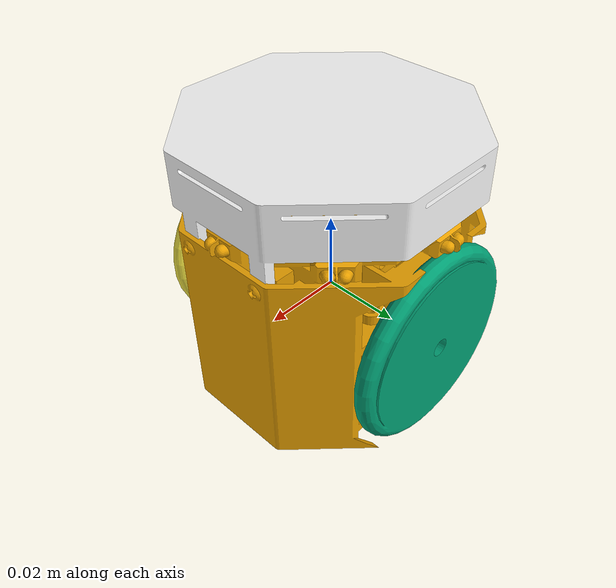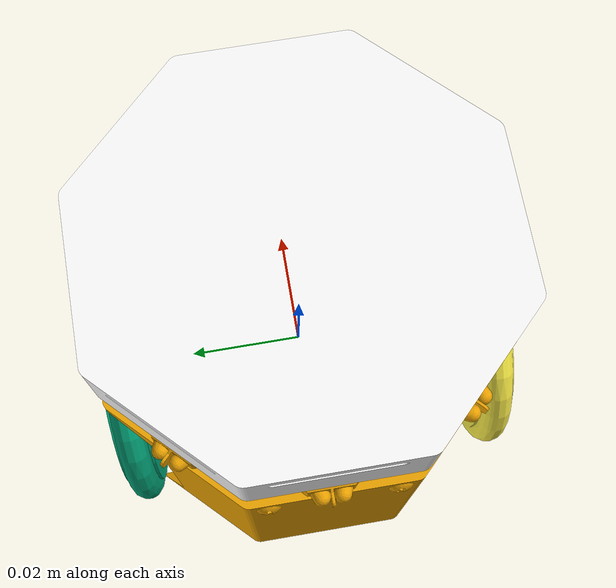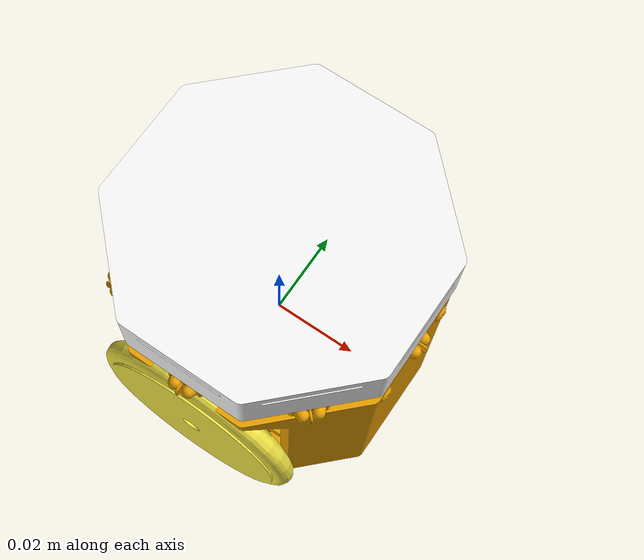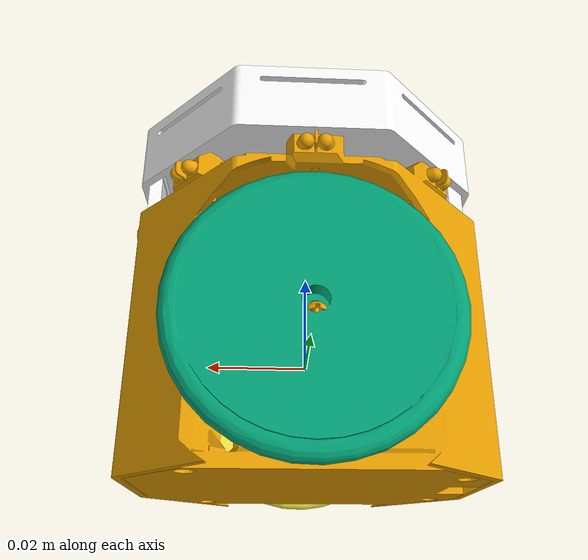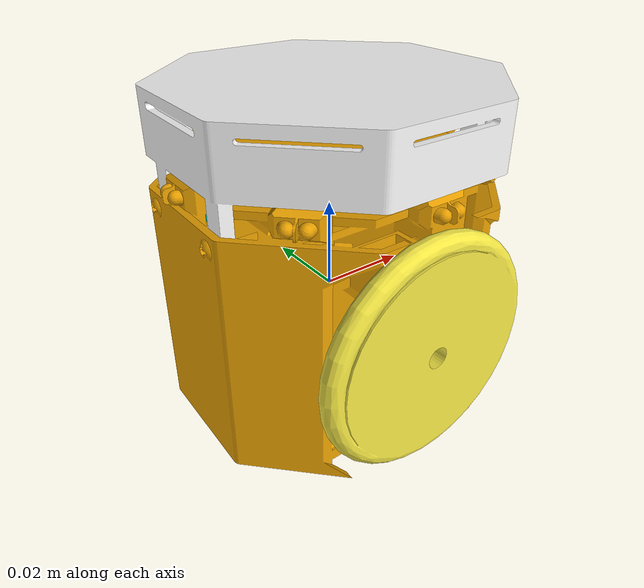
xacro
<?xml version="1.0"?>
<robot xmlns:xacro="http://www.ros.org/wiki/xacro" name="hero_0">
  <!-- Properties  -->
  <xacro:include filename="$(find hero_description)/urdf/common.xacro" />
  <!-- Initiate HeRo model and controller -->
  <xacro:include filename="$(find hero_description)/urdf/hero.xacro" />
  <xacro:include filename="$(find hero_description)/urdf/hero.gazebo.xacro" />
  <xacro:include filename="$(find hero_description)/urdf/hero.transmissions.xacro" />
  <!-- Initiate Laser and IMU sensors -->

</robot>

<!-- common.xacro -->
<robot xmlns:xacro="http://www.ros.org/wiki/xacro">

  <!-- Some properties of HERO -->
  <property name="PI" value="3.1415926535897931" />
  <property name="wheel_separation" value="0.0623" />
  <property name="wheel_diameter" value="0.052" />

  <macro name="cylinder_inertia" params="m r h">
    <inertia ixx="${m*(3*r*r+h*h)/12}" ixy = "0" ixz = "0" iyy="${m*(3*r*r+h*h)/12}" iyz = "0" izz="${m*r*r/2}" />
  </macro>

  <macro name="box_inertia" params="m x y z">
    <inertia ixx="${m*(y*y+z*z)/12}" ixy = "0" ixz = "0" iyy="${m*(x*x+z*z)/12}" iyz = "0" izz="${m*(x*x+z*z)/12}" />
  </macro>

</robot>

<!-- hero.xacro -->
<robot xmlns:xacro="http://www.ros.org/wiki/xacro">

  <!-- Here was the base link definitions -->
  <link name="base_link">
    <visual>
      <origin xyz="0 0 0" rpy="0 0 ${PI}" />
      <geometry>
        <mesh filename="package://hero_description/meshes/base_link.dae" scale="1 1 1"/>
      </geometry>
    </visual>
    <collision>
      <origin xyz="0 0 0" rpy="0 0 ${PI}" />
      <geometry>
        <cylinder length="0.048" radius="0.036"/>
      </geometry>
    </collision>
    <inertial>
      <mass value="0.090" />
      <origin xyz="0 0 0" rpy="0 0 0"/>
      <xacro:cylinder_inertia m="0.090" r="0.035" h="0.055"/>
    </inertial>
  </link>
  <gazebo reference="base_link">
    <gravity>1</gravity>
    <mu1 value="0.01"/>
    <mu2 value="0.01"/>
  </gazebo>

  <!--  Here was the hat joint and link -->
  <joint name="hat_joint" type="fixed">
    <origin xyz="0.0001 0 0.038" rpy="0 0 0" />
    <parent link="base_link"/>
    <child link="hat_link"/>
  </joint>
  <link name="hat_link">
    <visual>
      <origin xyz="0 0 0" rpy="0 0 0" />
      <geometry>
        <mesh filename="package://hero_description/meshes/hat.dae" scale="1 1 1"/>
      </geometry>
    </visual>
    <collision>
      <origin xyz="0 0 0" rpy="0 0 0" />
      <geometry>
        <cylinder length="0.02" radius="0.040"/>
      </geometry>
    </collision>
    <inertial>
      <mass value="0.010" />
      <origin xyz="0 0 0" rpy="0 0 0"/>
      <xacro:cylinder_inertia m="0.010" r="0.035" h="0.02"/>
    </inertial>
  </link>
  <gazebo reference="hat_link">
    <gravity>1</gravity>
    <maxVel value="0.10"/>
  </gazebo>

  <!--  Here was the left wheel joint and link -->
  <joint name="left_wheel_joint" type="continuous">
    <parent link="base_link"/>
    <child link="left_wheel_link"/>
    <origin xyz="0 ${wheel_separation/2} 0.0005" rpy="0 0 0" />
    <axis xyz="0 1 0" />
    <limit effort="100" velocity="0.3"/>
    <dynamics damping="0.0" friction="0.0" />
  </joint>
  <link name="left_wheel_link">
    <visual>
      <origin xyz="0 0 0.0" rpy="${PI/2} 0 0" />
      <geometry>
        <mesh filename="package://hero_description/meshes/wheel.dae" scale="1 1 1"/>
      </geometry>
    </visual>
    <collision>
      <origin xyz="0 0 0.0" rpy="${PI/2} 0 0" />
      <geometry>
        <cylinder length="0.008" radius="${wheel_diameter/2.0}"/>
      </geometry>
    </collision>
    <inertial>
      <mass value="0.010" />
      <origin xyz="0 0 0" rpy="${PI/2} 0 0"/>
      <xacro:cylinder_inertia m="0.010" h="0.008" r="${wheel_diameter/2.0}"/>
    </inertial>
  </link>
  <gazebo reference="left_wheel_link">
    <mu1 value="0.8"/>
    <mu2 value="0.8"/>
    <gravity>1</gravity>
  </gazebo>

  <!--  Here was the right wheel joint and link -->
  <joint name="right_wheel_joint" type="continuous">
    <axis xyz="0 1 0" />
    <limit effort="100" velocity="0.3"/>
    <dynamics damping="0.0" friction="0" />
    <origin xyz="0 ${-wheel_separation/2} 0.0005" rpy="0 0 0" />
    <parent link="base_link"/>
    <child link="right_wheel_link"/>
  </joint>
  <link name="right_wheel_link">
    <visual>
      <origin xyz="0 0 0.0" rpy="${-PI/2} 0 0" />
      <geometry>
        <mesh filename="package://hero_description/meshes/wheel.dae" scale="1 1 1"/>
      </geometry>
    </visual>
    <collision>
      <origin xyz="0 0 0.0" rpy="${-PI/2} 0 0" />
      <geometry>
        <cylinder length="0.008" radius="${wheel_diameter/2.0}"/>
      </geometry>
    </collision>
    <inertial>
      <mass value="0.010" />
      <origin xyz="0 0 0" rpy="${-PI/2} 0 0"/>
      <xacro:cylinder_inertia m="0.010" h="0.008" r="${wheel_diameter/2.0}"/>
    </inertial>
  </link>
  <gazebo reference="right_wheel_link">
    <mu1 value="0.8"/>
    <mu2 value="0.8"/>
    <gravity>1</gravity>
  </gazebo>

</robot>
